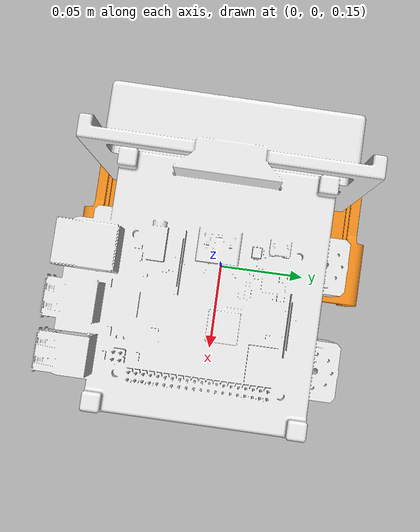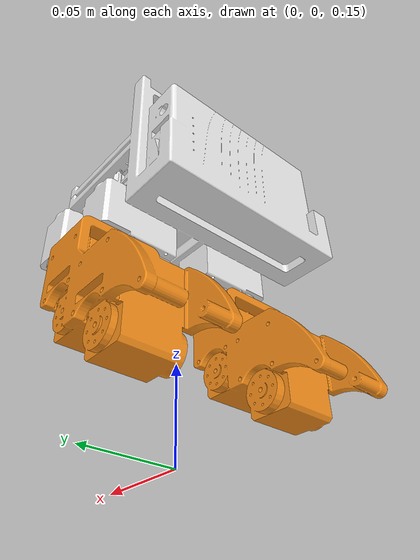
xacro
<?xml version="1.0"?>
<robot xmlns:xacro="http://www.ros.org/wiki/xacro">

    <!-- BASE LINK -->

    <link name="base_link"/>

    <!-- CHASSIS LINK -->

    <joint name="chassis_joint" type="fixed">
        <parent link="base_link"/>
        <child link="chassis"/>
        <origin xyz="0 0 0.25" rpy="0 0 0"/>
    </joint>

    <link name="chassis">
        <visual>
            <origin xyz="0.03992 0.11293 -0.02583" rpy="${pi/2} 0 0"/>
            <geometry>
                <mesh filename="package://droid/description/meshes/chassis.STL" scale="0.001 0.001 0.001"/>
            </geometry>
            <material name="white"/>
        </visual>
        <collision>
            <origin xyz="0.03992 0.11293 -0.02583" rpy="${pi/2} 0 0"/>
            <geometry>
                <mesh filename="package://droid/description/meshes/chassis.STL" scale="0.001 0.001 0.001"/>
            </geometry>
        </collision>
        <inertial>
            <origin xyz="-0.00335 0 0.04408" rpy="0 0 0"/>
            <mass value="0.710"/>
            <inertia ixx="0.001020342"  ixy="-0.000029751"  ixz="0.000081459"
            iyy="0.001357339" iyz="-0.000026283" izz="0.001569161"/>
        </inertial>
    </link>

    <!-- LEFT HIP LINK -->

    <joint name="left_hip_joint" type="revolute">
        <parent link="chassis"/>
        <child link="left_hip"/>
        <origin xyz="0 0.0461 0" rpy="0 0 0"/>
        <axis xyz="0 0 1"/>
        <limit lower="0" upper="${pi/6}" velocity="100" effort="100"/>
    </joint>

    <link name="left_hip">
        <visual>
            <origin xyz="-0.05164 0.06573 -0.08226" rpy="${pi/2} 0 0"/>
            <geometry>
                <mesh filename="package://droid/description/meshes/left_hip.STL" scale="0.001 0.001 0.001"/>
            </geometry>
            <material name="orange"/>
        </visual>
        <collision>
            <origin xyz="-0.05164 0.06573 -0.08226" rpy="${pi/2} 0 0"/>
            <geometry>
                <mesh filename="package://droid/description/meshes/left_hip.STL" scale="0.001 0.001 0.001"/>
            </geometry>
        </collision>
        <inertial>
            <origin xyz="-0.001594 -0.00051 -0.04019" rpy="0 0 0"/>
            <mass value="0.14121"/>
            <inertia ixx="0.000068413"  ixy="-0.000000090"  ixz="0.000027110"
            iyy="0.000093037" iyz="0.000000657" izz="0.000068140"/>
        </inertial>
    </link>

    <!-- RIGHT HIP LINK -->

    <joint name="right_hip_joint" type="revolute">
        <parent link="chassis"/>
        <child link="right_hip"/>
        <origin xyz="0 -0.0461 0" rpy="0 0 0"/>
        <axis xyz="0 0 -1"/>
        <limit lower="0" upper="${pi/6}" velocity="100" effort="100"/>
    </joint>

    <link name="right_hip">
        <visual>
            <origin xyz="-0.04505 0.06602 -0.0717" rpy="${pi/2} 0 0"/>
            <geometry>
                <mesh filename="package://droid/description/meshes/right_hip.STL" scale="0.001 0.001 0.001"/>
            </geometry>
            <material name="orange"/>
        </visual>
        <collision>
            <origin xyz="-0.04505 0.06602 -0.0717" rpy="${pi/2} 0 0"/>
            <geometry>
                <mesh filename="package://droid/description/meshes/right_hip.STL" scale="0.001 0.001 0.001"/>
            </geometry>
        </collision>
        <inertial>
            <origin xyz="-0.001594 0.00051 -0.04019" rpy="0 0 0"/>
            <mass value="0.14121"/>
            <inertia ixx="0.000068413"  ixy="0.000000090"  ixz="0.000027110"
            iyy="0.000093037" iyz="-0.000000657" izz="0.000068140"/>
        </inertial>
    </link>

</robot>
